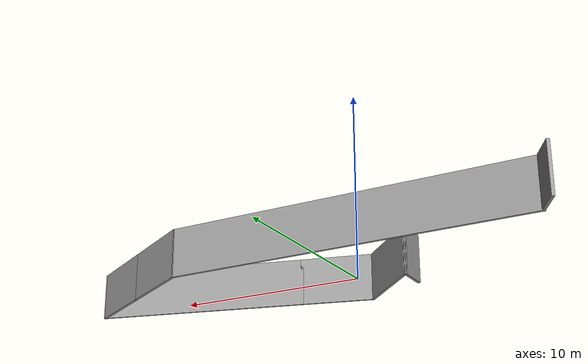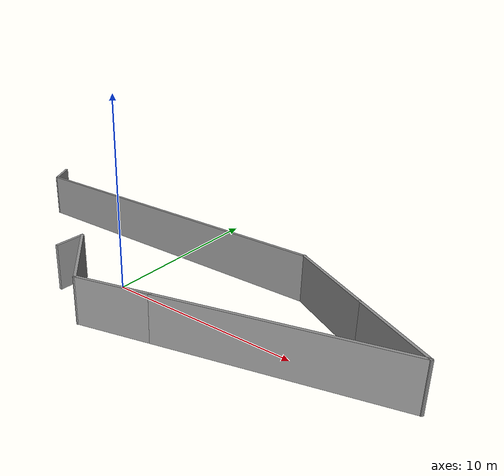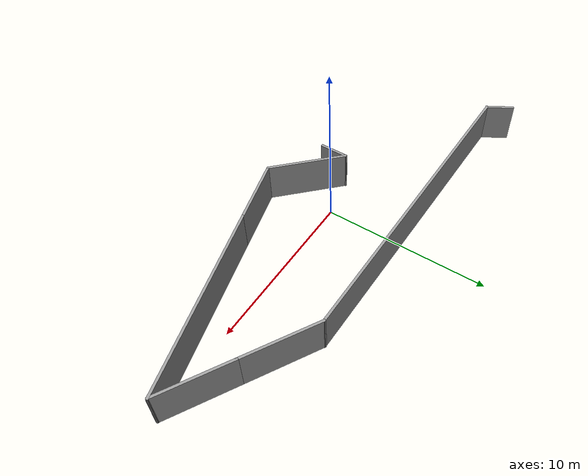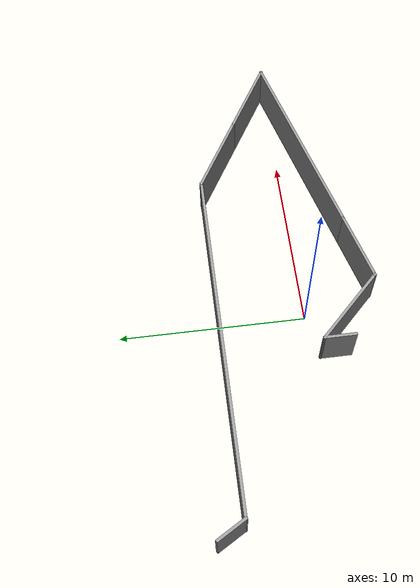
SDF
<?xml version='1.0'?>
<sdf version='1.6'>
  <model name='test2.worlds'>
    <pose frame=''>2.0093 1.17285 0 0 -0 0</pose>
    <link name='Wall_0'>
      <collision name='Wall_0_Collision'>
        <geometry>
          <box>
            <size>1.75 0.15 2.5</size>
          </box>
        </geometry>
        <pose frame=''>0 0 1.25 0 -0 0</pose>
      </collision>
      <visual name='Wall_0_Visual'>
        <pose frame=''>0 0 1.25 0 -0 0</pose>
        <geometry>
          <box>
            <size>1.75 0.15 2.5</size>
          </box>
        </geometry>
        <material>
          <script>
            <uri>file://media/materials/scripts/gazebo.material</uri>
            <name>Gazebo/Grey</name>
          </script>
          <ambient>1 1 1 1</ambient>
        </material>
        <meta>
          <layer>0</layer>
        </meta>
      </visual>
      <pose frame=''>-4.3593 -2.44285 0 0 -0 1.5708</pose>
    </link>
    <link name='Wall_1'>
      <collision name='Wall_1_Collision'>
        <geometry>
          <box>
            <size>4.75 0.15 2.5</size>
          </box>
        </geometry>
        <pose frame=''>0 0 1.25 0 -0 0</pose>
      </collision>
      <visual name='Wall_1_Visual'>
        <pose frame=''>0 0 1.25 0 -0 0</pose>
        <geometry>
          <box>
            <size>4.75 0.15 2.5</size>
          </box>
        </geometry>
        <material>
          <script>
            <uri>file://media/materials/scripts/gazebo.material</uri>
            <name>Gazebo/Grey</name>
          </script>
          <ambient>1 1 1 1</ambient>
        </material>
        <meta>
          <layer>0</layer>
        </meta>
      </visual>
      <pose frame=''>-2.73296 -3.26919 0 0 -0 -0.785398</pose>
    </link>
    <link name='Wall_2'>
      <collision name='Wall_2_Collision'>
        <geometry>
          <box>
            <size>4 0.15 2.5</size>
          </box>
        </geometry>
        <pose frame=''>0 0 1.25 0 -0 0</pose>
      </collision>
      <visual name='Wall_2_Visual'>
        <pose frame=''>0 0 1.25 0 -0 0</pose>
        <geometry>
          <box>
            <size>4 0.15 2.5</size>
          </box>
        </geometry>
        <material>
          <script>
            <uri>file://media/materials/scripts/gazebo.material</uri>
            <name>Gazebo/Grey</name>
          </script>
          <ambient>1 1 1 1</ambient>
        </material>
        <meta>
          <layer>0</layer>
        </meta>
      </visual>
      <pose frame=''>0.752798 -4.39731 0 0 -0 0.261799</pose>
    </link>
    <link name='Wall_3'>
      <collision name='Wall_3_Collision'>
        <geometry>
          <box>
            <size>11.5 0.15 2.5</size>
          </box>
        </geometry>
        <pose frame=''>0 0 1.25 0 -0 0</pose>
      </collision>
      <visual name='Wall_3_Visual'>
        <pose frame=''>0 0 1.25 0 -0 0</pose>
        <geometry>
          <box>
            <size>11.5 0.15 2.5</size>
          </box>
        </geometry>
        <material>
          <script>
            <uri>file://media/materials/scripts/gazebo.material</uri>
            <name>Gazebo/Grey</name>
          </script>
          <ambient>1 1 1 1</ambient>
        </material>
        <meta>
          <layer>0</layer>
        </meta>
      </visual>
      <pose frame=''>8.09383 -2.43029 0 0 -0 0.261799</pose>
    </link>
    <link name='Wall_4'>
      <collision name='Wall_4_Collision'>
        <geometry>
          <box>
            <size>4.5 0.15 2.5</size>
          </box>
        </geometry>
        <pose frame=''>0 0 1.25 0 -0 0</pose>
      </collision>
      <visual name='Wall_4_Visual'>
        <pose frame=''>0 0 1.25 0 -0 0</pose>
        <geometry>
          <box>
            <size>4.5 0.15 2.5</size>
          </box>
        </geometry>
        <material>
          <script>
            <uri>file://media/materials/scripts/gazebo.material</uri>
            <name>Gazebo/Grey</name>
          </script>
          <ambient>1 1 1 1</ambient>
        </material>
        <meta>
          <layer>0</layer>
        </meta>
      </visual>
      <pose frame=''>11.6919 0.126012 0 0 -0 2.61799</pose>
    </link>
    <link name='Wall_5'>
      <collision name='Wall_5_Collision'>
        <geometry>
          <box>
            <size>4.75 0.15 2.5</size>
          </box>
        </geometry>
        <pose frame=''>0 0 1.25 0 -0 0</pose>
      </collision>
      <visual name='Wall_5_Visual'>
        <pose frame=''>0 0 1.25 0 -0 0</pose>
        <geometry>
          <box>
            <size>4.75 0.15 2.5</size>
          </box>
        </geometry>
        <material>
          <script>
            <uri>file://media/materials/scripts/gazebo.material</uri>
            <name>Gazebo/Grey</name>
          </script>
          <ambient>1 1 1 1</ambient>
        </material>
        <meta>
          <layer>0</layer>
        </meta>
      </visual>
      <pose frame=''>7.81639 2.36351 0 0 -0 2.61799</pose>
    </link>
    <link name='Wall_6'>
      <collision name='Wall_6_Collision'>
        <geometry>
          <box>
            <size>18.75 0.15 2.5</size>
          </box>
        </geometry>
        <pose frame=''>0 0 1.25 0 -0 0</pose>
      </collision>
      <visual name='Wall_6_Visual'>
        <pose frame=''>0 0 1.25 0 -0 0</pose>
        <geometry>
          <box>
            <size>18.75 0.15 2.5</size>
          </box>
        </geometry>
        <material>
          <script>
            <uri>file://media/materials/scripts/gazebo.material</uri>
            <name>Gazebo/Grey</name>
          </script>
          <ambient>1 1 1 1</ambient>
        </material>
        <meta>
          <layer>0</layer>
        </meta>
      </visual>
      <pose frame=''>-3.47546 3.51351 0 0 -0 3.14159</pose>
    </link>
    <link name='Wall_7'>
      <collision name='Wall_7_Collision'>
        <geometry>
          <box>
            <size>1.75 0.15 2.5</size>
          </box>
        </geometry>
        <pose frame=''>0 0 1.25 0 -0 0</pose>
      </collision>
      <visual name='Wall_7_Visual'>
        <pose frame=''>0 0 1.25 0 -0 0</pose>
        <geometry>
          <box>
            <size>1.75 0.15 2.5</size>
          </box>
        </geometry>
        <material>
          <script>
            <uri>file://media/materials/scripts/gazebo.material</uri>
            <name>Gazebo/Grey</name>
          </script>
          <ambient>1 1 1 1</ambient>
        </material>
        <meta>
          <layer>0</layer>
        </meta>
      </visual>
      <pose frame=''>-13.1755 4.20633 0 0 -0 2.0944</pose>
    </link>
    <static>1</static>
  </model>
</sdf>
